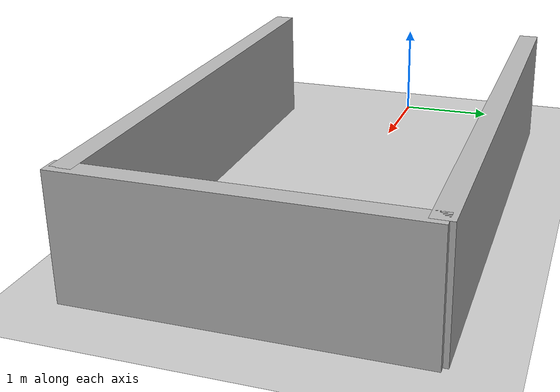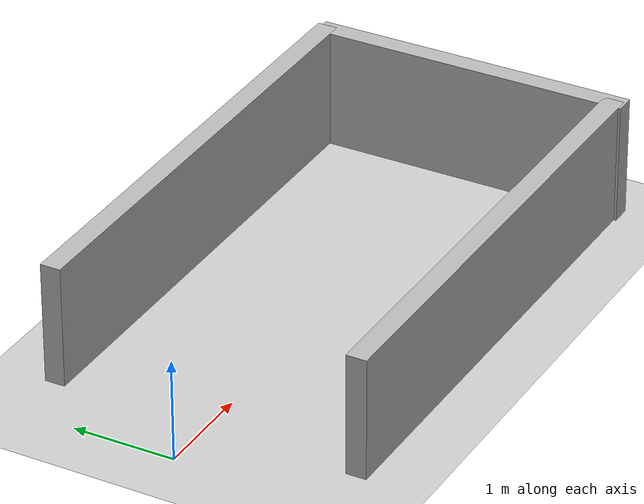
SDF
<?xml version="1.0"?>
<sdf version="1.6">
  <world name="v2-04g-r4-r1-maneuver-s5104">
    <gravity>0 0 -9.81</gravity>
    <physics name="v2_deterministic" type="ode">
      <max_step_size>0.002</max_step_size>
      <real_time_update_rate>500</real_time_update_rate>
    </physics>
    <include>
      <uri>model://sun</uri>
    </include>
    <include>
      <uri>model://ground_plane</uri>
    </include>
    <model name="bay-left">
      <static>true</static>
      <pose>3.020928236 1.523314054 0.600000000 0 0 0.001283984</pose>
      <link name="link">
        <collision name="collision">
          <geometry>
            <box>
              <size>5.000000 0.200000 1.200000</size>
            </box>
          </geometry>
        </collision>
        <visual name="visual">
          <geometry>
            <box>
              <size>5.000000 0.200000 1.200000</size>
            </box>
          </geometry>
        </visual>
      </link>
    </model>
    <model name="bay-right">
      <static>true</static>
      <pose>3.017516958 -1.492517570 0.600000000 0 0 -0.001610012</pose>
      <link name="link">
        <collision name="collision">
          <geometry>
            <box>
              <size>5.000000 0.200000 1.200000</size>
            </box>
          </geometry>
        </collision>
        <visual name="visual">
          <geometry>
            <box>
              <size>5.000000 0.200000 1.200000</size>
            </box>
          </geometry>
        </visual>
      </link>
    </model>
    <model name="bay-back">
      <static>true</static>
      <pose>5.484509428 -0.020797425 0.600000000 0 0 0.002542776</pose>
      <link name="link">
        <collision name="collision">
          <geometry>
            <box>
              <size>0.200000 3.200000 1.200000</size>
            </box>
          </geometry>
        </collision>
        <visual name="visual">
          <geometry>
            <box>
              <size>0.200000 3.200000 1.200000</size>
            </box>
          </geometry>
        </visual>
      </link>
    </model>
  </world>
</sdf>
